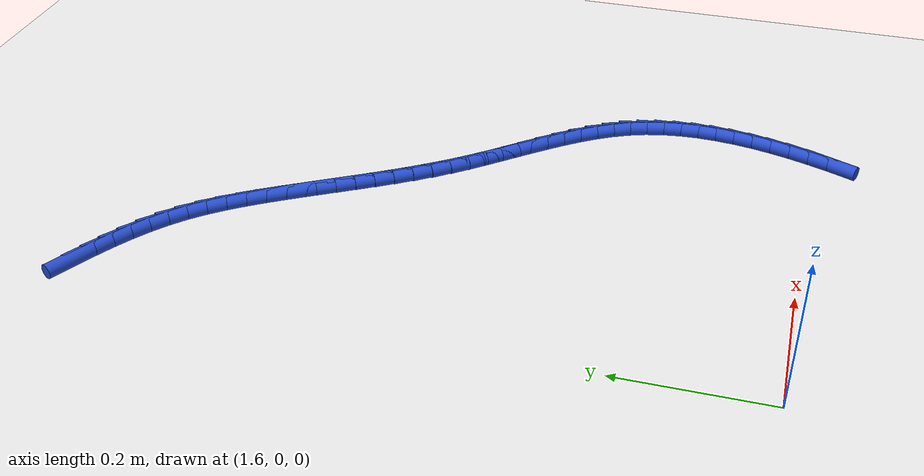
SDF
<sdf version="1.6">
 <world name="default">
  <model name="ground_plane">
   <static>1</static>
   <link name="link">
    <collision name="collision">
     <geometry><plane><normal>0 0 1</normal><size>100 100</size></plane></geometry>
     <surface><friction><ode><mu>100</mu><mu2>50</mu2></ode></friction></surface>
    </collision>
    <visual name="visual">
     <cast_shadows>0</cast_shadows>
     <geometry><plane><normal>0 0 1</normal><size>100 100</size></plane></geometry>
     <material>
      <script><uri>file://media/materials/scripts/gazebo.material</uri><name>Gazebo/WhiteGlow</name></script>
     </material>
    </visual>
   </link>
  </model>
  <model name="line">
   <link name="link_85">
    <pose>1.628274272299006 0.8895181521884443 0.01 0 1.57 -0.49684224573863983</pose>
    <collision name="collision">
     <geometry><cylinder><radius>0.01</radius><length>0.08</length></cylinder></geometry>
    </collision>
    <visual name="visual">
     <material>
      <script><name>Gazebo/Blue</name><uri>file://media/materials/scripts/gazebo.material</uri></script>
     </material>
     <geometry><cylinder><radius>0.01</radius><length>0.08</length></cylinder></geometry>
    </visual>
   </link>
   <link name="link_86">
    <pose>1.6521378713250359 0.8765790853720978 0.01 0 1.57 -0.5319849324068594</pose>
    <collision name="collision">
     <geometry><cylinder><radius>0.01</radius><length>0.08</length></cylinder></geometry>
    </collision>
    <visual name="visual">
     <material>
      <script><name>Gazebo/Blue</name><uri>file://media/materials/scripts/gazebo.material</uri></script>
     </material>
     <geometry><cylinder><radius>0.01</radius><length>0.08</length></cylinder></geometry>
    </visual>
   </link>
   <link name="link_87">
    <pose>1.6753445698274658 0.8629199364364021 0.01 0 1.57 -0.5766183289309372</pose>
    <collision name="collision">
     <geometry><cylinder><radius>0.01</radius><length>0.08</length></cylinder></geometry>
    </collision>
    <visual name="visual">
     <material>
      <script><name>Gazebo/Blue</name><uri>file://media/materials/scripts/gazebo.material</uri></script>
     </material>
     <geometry><cylinder><radius>0.01</radius><length>0.08</length></cylinder></geometry>
    </visual>
   </link>
   <link name="link_88">
    <pose>1.6977466575601943 0.8483508310594573 0.01 0 1.57 -0.6309002580454792</pose>
    <collision name="collision">
     <geometry><cylinder><radius>0.01</radius><length>0.08</length></cylinder></geometry>
    </collision>
    <visual name="visual">
     <material>
      <script><name>Gazebo/Blue</name><uri>file://media/materials/scripts/gazebo.material</uri></script>
     </material>
     <geometry><cylinder><radius>0.01</radius><length>0.08</length></cylinder></geometry>
    </visual>
   </link>
   <link name="link_89">
    <pose>1.7191964242771187 0.8326818949193627 0.01 0 1.57 -0.6947535985949771</pose>
    <collision name="collision">
     <geometry><cylinder><radius>0.01</radius><length>0.08</length></cylinder></geometry>
    </collision>
    <visual name="visual">
     <material>
      <script><name>Gazebo/Blue</name><uri>file://media/materials/scripts/gazebo.material</uri></script>
     </material>
     <geometry><cylinder><radius>0.01</radius><length>0.08</length></cylinder></geometry>
    </visual>
   </link>
   <link name="link_90">
    <pose>1.7395461597321356 0.815723253694218 0.01 0 1.57 -0.7677125456993331</pose>
    <collision name="collision">
     <geometry><cylinder><radius>0.01</radius><length>0.08</length></cylinder></geometry>
    </collision>
    <visual name="visual">
     <material>
      <script><name>Gazebo/Blue</name><uri>file://media/materials/scripts/gazebo.material</uri></script>
     </material>
     <geometry><cylinder><radius>0.01</radius><length>0.08</length></cylinder></geometry>
    </visual>
   </link>
   <link name="link_91">
    <pose>1.7586482420604739 0.7972851617654321 0.01 0 1.57 -0.8437632944353479</pose>
    <collision name="collision">
     <geometry><cylinder><radius>0.01</radius><length>0.08</length></cylinder></geometry>
    </collision>
    <visual name="visual">
     <material>
      <script><name>Gazebo/Blue</name><uri>file://media/materials/scripts/gazebo.material</uri></script>
     </material>
     <geometry><cylinder><radius>0.01</radius><length>0.08</length></cylinder></geometry>
    </visual>
   </link>
   <link name="link_92">
    <pose>1.7764336422517568 0.777292322574255 0.01 0 1.57 -0.9080763218410239</pose>
    <collision name="collision">
     <geometry><cylinder><radius>0.01</radius><length>0.08</length></cylinder></geometry>
    </collision>
    <visual name="visual">
     <material>
      <script><name>Gazebo/Blue</name><uri>file://media/materials/scripts/gazebo.material</uri></script>
     </material>
     <geometry><cylinder><radius>0.01</radius><length>0.08</length></cylinder></geometry>
    </visual>
   </link>
   <link name="link_93">
    <pose>1.7930562972148232 0.7559941286195899 0.01 0 1.57 -0.9587100588749417</pose>
    <collision name="collision">
     <geometry><cylinder><radius>0.01</radius><length>0.08</length></cylinder></geometry>
    </collision>
    <visual name="visual">
     <material>
      <script><name>Gazebo/Blue</name><uri>file://media/materials/scripts/gazebo.material</uri></script>
     </material>
     <geometry><cylinder><radius>0.01</radius><length>0.08</length></cylinder></geometry>
    </visual>
   </link>
   <link name="link_94">
    <pose>1.808709412990205 0.733697157181806 0.01 0 1.57 -0.9964474598802279</pose>
    <collision name="collision">
     <geometry><cylinder><radius>0.01</radius><length>0.08</length></cylinder></geometry>
    </collision>
    <visual name="visual">
     <material>
      <script><name>Gazebo/Blue</name><uri>file://media/materials/scripts/gazebo.material</uri></script>
     </material>
     <geometry><cylinder><radius>0.01</radius><length>0.08</length></cylinder></geometry>
    </visual>
   </link>
   <link name="link_95">
    <pose>1.8235861956184365 0.7107079855412716 0.01 0 1.57 -1.0219648035505666</pose>
    <collision name="collision">
     <geometry><cylinder><radius>0.01</radius><length>0.08</length></cylinder></geometry>
    </collision>
    <visual name="visual">
     <material>
      <script><name>Gazebo/Blue</name><uri>file://media/materials/scripts/gazebo.material</uri></script>
     </material>
     <geometry><cylinder><radius>0.01</radius><length>0.08</length></cylinder></geometry>
    </visual>
   </link>
   <link name="link_96">
    <pose>1.8378798511400485 0.6873331909783552 0.01 0 1.57 -1.0360712798955023</pose>
    <collision name="collision">
     <geometry><cylinder><radius>0.01</radius><length>0.08</length></cylinder></geometry>
    </collision>
    <visual name="visual">
     <material>
      <script><name>Gazebo/Blue</name><uri>file://media/materials/scripts/gazebo.material</uri></script>
     </material>
     <geometry><cylinder><radius>0.01</radius><length>0.08</length></cylinder></geometry>
    </visual>
   </link>
   <link name="link_97">
    <pose>1.8517807704669418 0.6638630816277493 0.01 0 1.57 -1.04271239100812</pose>
    <collision name="collision">
     <geometry><cylinder><radius>0.01</radius><length>0.08</length></cylinder></geometry>
    </collision>
    <visual name="visual">
     <material>
      <script><name>Gazebo/Blue</name><uri>file://media/materials/scripts/gazebo.material</uri></script>
     </material>
     <geometry><cylinder><radius>0.01</radius><length>0.08</length></cylinder></geometry>
    </visual>
   </link>
   <link name="link_98">
    <pose>1.865451634658521 0.6404278252946978 0.01 0 1.57 -1.0439897596024617</pose>
    <collision name="collision">
     <geometry><cylinder><radius>0.01</radius><length>0.08</length></cylinder></geometry>
    </collision>
    <visual name="visual">
     <material>
      <script><name>Gazebo/Blue</name><uri>file://media/materials/scripts/gazebo.material</uri></script>
     </material>
     <geometry><cylinder><radius>0.01</radius><length>0.08</length></cylinder></geometry>
    </visual>
   </link>
   <link name="link_99">
    <pose>1.879039372804766 0.6170665562585831 0.01 0 1.57 -1.0398599641447368</pose>
    <collision name="collision">
     <geometry><cylinder><radius>0.01</radius><length>0.08</length></cylinder></geometry>
    </collision>
    <visual name="visual">
     <material>
      <script><name>Gazebo/Blue</name><uri>file://media/materials/scripts/gazebo.material</uri></script>
     </material>
     <geometry><cylinder><radius>0.01</radius><length>0.08</length></cylinder></geometry>
    </visual>
   </link>
   <link name="link_100">
    <pose>1.8926907323231492 0.5938173588799935 0.01 0 1.57 -1.0303035044603241</pose>
    <collision name="collision">
     <geometry><cylinder><radius>0.01</radius><length>0.08</length></cylinder></geometry>
    </collision>
    <visual name="visual">
     <material>
      <script><name>Gazebo/Blue</name><uri>file://media/materials/scripts/gazebo.material</uri></script>
     </material>
     <geometry><cylinder><radius>0.01</radius><length>0.08</length></cylinder></geometry>
    </visual>
   </link>
   <link name="link_101">
    <pose>1.9065524606311453 0.5707183175195182 0.01 0 1.57 -1.0153546658575747</pose>
    <collision name="collision">
     <geometry><cylinder><radius>0.01</radius><length>0.08</length></cylinder></geometry>
    </collision>
    <visual name="visual">
     <material>
      <script><name>Gazebo/Blue</name><uri>file://media/materials/scripts/gazebo.material</uri></script>
     </material>
     <geometry><cylinder><radius>0.01</radius><length>0.08</length></cylinder></geometry>
    </visual>
   </link>
   <link name="link_102">
    <pose>1.9207713051462265 0.5478075165377456 0.01 0 1.57 -0.9951094317340377</pose>
    <collision name="collision">
     <geometry><cylinder><radius>0.01</radius><length>0.08</length></cylinder></geometry>
    </collision>
    <visual name="visual">
     <material>
      <script><name>Gazebo/Blue</name><uri>file://media/materials/scripts/gazebo.material</uri></script>
     </material>
     <geometry><cylinder><radius>0.01</radius><length>0.08</length></cylinder></geometry>
    </visual>
   </link>
   <link name="link_103">
    <pose>1.9354940132858662 0.5251230402952641 0.01 0 1.57 -0.9697359558217709</pose>
    <collision name="collision">
     <geometry><cylinder><radius>0.01</radius><length>0.08</length></cylinder></geometry>
    </collision>
    <visual name="visual">
     <material>
      <script><name>Gazebo/Blue</name><uri>file://media/materials/scripts/gazebo.material</uri></script>
     </material>
     <geometry><cylinder><radius>0.01</radius><length>0.08</length></cylinder></geometry>
    </visual>
   </link>
   <link name="link_104">
    <pose>1.950867332467538 0.5027029731526625 0.01 0 1.57 -0.9394860442144648</pose>
    <collision name="collision">
     <geometry><cylinder><radius>0.01</radius><length>0.08</length></cylinder></geometry>
    </collision>
    <visual name="visual">
     <material>
      <script><name>Gazebo/Blue</name><uri>file://media/materials/scripts/gazebo.material</uri></script>
     </material>
     <geometry><cylinder><radius>0.01</radius><length>0.08</length></cylinder></geometry>
    </visual>
   </link>
   <link name="link_105">
    <pose>1.967038010108716 0.48058539947053 0.01 0 1.57 -0.905326042271216</pose>
    <collision name="collision">
     <geometry><cylinder><radius>0.01</radius><length>0.08</length></cylinder></geometry>
    </collision>
    <visual name="visual">
     <material>
      <script><name>Gazebo/Blue</name><uri>file://media/materials/scripts/gazebo.material</uri></script>
     </material>
     <geometry><cylinder><radius>0.01</radius><length>0.08</length></cylinder></geometry>
    </visual>
   </link>
   <link name="link_106">
    <pose>1.984135054569822 0.45880316168662605 0.01 0 1.57 -0.8769935058342964</pose>
    <collision name="collision">
     <geometry><cylinder><radius>0.01</radius><length>0.08</length></cylinder></geometry>
    </collision>
    <visual name="visual">
     <material>
      <script><name>Gazebo/Blue</name><uri>file://media/materials/scripts/gazebo.material</uri></script>
     </material>
     <geometry><cylinder><radius>0.01</radius><length>0.08</length></cylinder></geometry>
    </visual>
   </link>
   <link name="link_107">
    <pose>2.0020135208179353 0.4373081485249735 0.01 0 1.57 -0.861474964989389</pose>
    <collision name="collision">
     <geometry><cylinder><radius>0.01</radius><length>0.08</length></cylinder></geometry>
    </collision>
    <visual name="visual">
     <material>
      <script><name>Gazebo/Blue</name><uri>file://media/materials/scripts/gazebo.material</uri></script>
     </material>
     <geometry><cylinder><radius>0.01</radius><length>0.08</length></cylinder></geometry>
    </visual>
   </link>
   <link name="link_108">
    <pose>2.0203131272545787 0.4159886163724565 0.01 0 1.57 -0.8585490865770606</pose>
    <collision name="collision">
     <geometry><cylinder><radius>0.01</radius><length>0.08</length></cylinder></geometry>
    </collision>
    <visual name="visual">
     <material>
      <script><name>Gazebo/Blue</name><uri>file://media/materials/scripts/gazebo.material</uri></script>
     </material>
     <geometry><cylinder><radius>0.01</radius><length>0.08</length></cylinder></geometry>
    </visual>
   </link>
   <link name="link_109">
    <pose>2.038667790017676 0.3947311070367722 0.01 0 1.57 -0.8681842586876788</pose>
    <collision name="collision">
     <geometry><cylinder><radius>0.01</radius><length>0.08</length></cylinder></geometry>
    </collision>
    <visual name="visual">
     <material>
      <script><name>Gazebo/Blue</name><uri>file://media/materials/scripts/gazebo.material</uri></script>
     </material>
     <geometry><cylinder><radius>0.01</radius><length>0.08</length></cylinder></geometry>
    </visual>
   </link>
   <link name="link_110">
    <pose>2.056711425245149 0.37342216232561737 0.01 0 1.57 -0.8907552135814855</pose>
    <collision name="collision">
     <geometry><cylinder><radius>0.01</radius><length>0.08</length></cylinder></geometry>
    </collision>
    <visual name="visual">
     <material>
      <script><name>Gazebo/Blue</name><uri>file://media/materials/scripts/gazebo.material</uri></script>
     </material>
     <geometry><cylinder><radius>0.01</radius><length>0.08</length></cylinder></geometry>
    </visual>
   </link>
   <link name="link_111">
    <pose>2.0740779490749195 0.35194832404668913 0.01 0 1.57 -0.9270249981093669</pose>
    <collision name="collision">
     <geometry><cylinder><radius>0.01</radius><length>0.08</length></cylinder></geometry>
    </collision>
    <visual name="visual">
     <material>
      <script><name>Gazebo/Blue</name><uri>file://media/materials/scripts/gazebo.material</uri></script>
     </material>
     <geometry><cylinder><radius>0.01</radius><length>0.08</length></cylinder></geometry>
    </visual>
   </link>
   <link name="link_112">
    <pose>2.0904012776449106 0.3301961340076843 0.01 0 1.57 -0.9780758287364772</pose>
    <collision name="collision">
     <geometry><cylinder><radius>0.01</radius><length>0.08</length></cylinder></geometry>
    </collision>
    <visual name="visual">
     <material>
      <script><name>Gazebo/Blue</name><uri>file://media/materials/scripts/gazebo.material</uri></script>
     </material>
     <geometry><cylinder><radius>0.01</radius><length>0.08</length></cylinder></geometry>
    </visual>
   </link>
   <link name="link_113">
    <pose>2.105315327093046 0.3080521340163001 0.01 0 1.57 -1.0451427953588288</pose>
    <collision name="collision">
     <geometry><cylinder><radius>0.01</radius><length>0.08</length></cylinder></geometry>
    </collision>
    <visual name="visual">
     <material>
      <script><name>Gazebo/Blue</name><uri>file://media/materials/scripts/gazebo.material</uri></script>
     </material>
     <geometry><cylinder><radius>0.01</radius><length>0.08</length></cylinder></geometry>
    </visual>
   </link>
   <link name="link_114">
    <pose>2.1184540135572476 0.28540286588023345 0.01 0 1.57 -1.1292804029817711</pose>
    <collision name="collision">
     <geometry><cylinder><radius>0.01</radius><length>0.08</length></cylinder></geometry>
    </collision>
    <visual name="visual">
     <material>
      <script><name>Gazebo/Blue</name><uri>file://media/materials/scripts/gazebo.material</uri></script>
     </material>
     <geometry><cylinder><radius>0.01</radius><length>0.08</length></cylinder></geometry>
    </visual>
   </link>
   <link name="link_115">
    <pose>2.1294512531754384 0.26213487140718117 0.01 0 1.57 -1.2301131521014206</pose>
    <collision name="collision">
     <geometry><cylinder><radius>0.01</radius><length>0.08</length></cylinder></geometry>
    </collision>
    <visual name="visual">
     <material>
      <script><name>Gazebo/Blue</name><uri>file://media/materials/scripts/gazebo.material</uri></script>
     </material>
     <geometry><cylinder><radius>0.01</radius><length>0.08</length></cylinder></geometry>
    </visual>
   </link>
   <link name="link_116">
    <pose>2.137957220833913 0.23814099181949167 0.01 0 1.57 -1.3351066473388362</pose>
    <collision name="collision">
     <geometry><cylinder><radius>0.01</radius><length>0.08</length></cylinder></geometry>
    </collision>
    <visual name="visual">
     <material>
      <script><name>Gazebo/Blue</name><uri>file://media/materials/scripts/gazebo.material</uri></script>
     </material>
     <geometry><cylinder><radius>0.01</radius><length>0.08</length></cylinder></geometry>
    </visual>
   </link>
   <link name="link_117">
    <pose>2.143894166270544 0.213419483114809 0.01 0 1.57 -1.433073792004144</pose>
    <collision name="collision">
     <geometry><cylinder><radius>0.01</radius><length>0.08</length></cylinder></geometry>
    </collision>
    <visual name="visual">
     <material>
      <script><name>Gazebo/Blue</name><uri>file://media/materials/scripts/gazebo.material</uri></script>
     </material>
     <geometry><cylinder><radius>0.01</radius><length>0.08</length></cylinder></geometry>
    </visual>
   </link>
   <link name="link_118">
    <pose>2.147409562495682 0.18805586352954037 0.01 0 1.57 -1.5226768742899677</pose>
    <collision name="collision">
     <geometry><cylinder><radius>0.01</radius><length>0.08</length></cylinder></geometry>
    </collision>
    <visual name="visual">
     <material>
      <script><name>Gazebo/Blue</name><uri>file://media/materials/scripts/gazebo.material</uri></script>
     </material>
     <geometry><cylinder><radius>0.01</radius><length>0.08</length></cylinder></geometry>
    </visual>
   </link>
   <link name="link_119">
    <pose>2.1486576659178036 0.1621382795120905 0.01 0 1.57 1.5380248399051144</pose>
    <collision name="collision">
     <geometry><cylinder><radius>0.01</radius><length>0.08</length></cylinder></geometry>
    </collision>
    <visual name="visual">
     <material>
      <script><name>Gazebo/Blue</name><uri>file://media/materials/scripts/gazebo.material</uri></script>
     </material>
     <geometry><cylinder><radius>0.01</radius><length>0.08</length></cylinder></geometry>
    </visual>
   </link>
   <link name="link_120">
    <pose>2.1477927329453843 0.13575487751086426 0.01 0 1.57 1.465669636690455</pose>
    <collision name="collision">
     <geometry><cylinder><radius>0.01</radius><length>0.08</length></cylinder></geometry>
    </collision>
    <visual name="visual">
     <material>
      <script><name>Gazebo/Blue</name><uri>file://media/materials/scripts/gazebo.material</uri></script>
     </material>
     <geometry><cylinder><radius>0.01</radius><length>0.08</length></cylinder></geometry>
    </visual>
   </link>
   <link name="link_121">
    <pose>2.144969019986901 0.1089938039742657 0.01 0 1.57 1.4013416032686552</pose>
    <collision name="collision">
     <geometry><cylinder><radius>0.01</radius><length>0.08</length></cylinder></geometry>
    </collision>
    <visual name="visual">
     <material>
      <script><name>Gazebo/Blue</name><uri>file://media/materials/scripts/gazebo.material</uri></script>
     </material>
     <geometry><cylinder><radius>0.01</radius><length>0.08</length></cylinder></geometry>
    </visual>
   </link>
   <link name="link_122">
    <pose>2.1403407834508297 0.08194320535069968 0.01 0 1.57 1.3443603292998643</pose>
    <collision name="collision">
     <geometry><cylinder><radius>0.01</radius><length>0.08</length></cylinder></geometry>
    </collision>
    <visual name="visual">
     <material>
      <script><name>Gazebo/Blue</name><uri>file://media/materials/scripts/gazebo.material</uri></script>
     </material>
     <geometry><cylinder><radius>0.01</radius><length>0.08</length></cylinder></geometry>
    </visual>
   </link>
   <link name="link_123">
    <pose>2.1340622797456468 0.054691228088570874 0.01 0 1.57 1.2939877794322712</pose>
    <collision name="collision">
     <geometry><cylinder><radius>0.01</radius><length>0.08</length></cylinder></geometry>
    </collision>
    <visual name="visual">
     <material>
      <script><name>Gazebo/Blue</name><uri>file://media/materials/scripts/gazebo.material</uri></script>
     </material>
     <geometry><cylinder><radius>0.01</radius><length>0.08</length></cylinder></geometry>
    </visual>
   </link>
   <link name="link_124">
    <pose>2.1262877652798275 0.027326018636283856 0.01 0 1.57 1.249500258437617</pose>
    <collision name="collision">
     <geometry><cylinder><radius>0.01</radius><length>0.08</length></cylinder></geometry>
    </collision>
    <visual name="visual">
     <material>
      <script><name>Gazebo/Blue</name><uri>file://media/materials/scripts/gazebo.material</uri></script>
     </material>
     <geometry><cylinder><radius>0.01</radius><length>0.08</length></cylinder></geometry>
    </visual>
   </link>
   <link name="link_125">
    <pose>2.117171496461849 -6.427655775673516e-05 0.01 0 1.57 1.2102285514513191</pose>
    <collision name="collision">
     <geometry><cylinder><radius>0.01</radius><length>0.08</length></cylinder></geometry>
    </collision>
    <visual name="visual">
     <material>
      <script><name>Gazebo/Blue</name><uri>file://media/materials/scripts/gazebo.material</uri></script>
     </material>
     <geometry><cylinder><radius>0.01</radius><length>0.08</length></cylinder></geometry>
    </visual>
   </link>
   <link name="link_126">
    <pose>2.1068677297001863 -0.027391511045146248 0.01 0 1.57 1.1755768789408314</pose>
    <collision name="collision">
     <geometry><cylinder><radius>0.01</radius><length>0.08</length></cylinder></geometry>
    </collision>
    <visual name="visual">
     <material>
      <script><name>Gazebo/Blue</name><uri>file://media/materials/scripts/gazebo.material</uri></script>
     </material>
     <geometry><cylinder><radius>0.01</radius><length>0.08</length></cylinder></geometry>
    </visual>
   </link>
  </model>
 </world>
</sdf>
